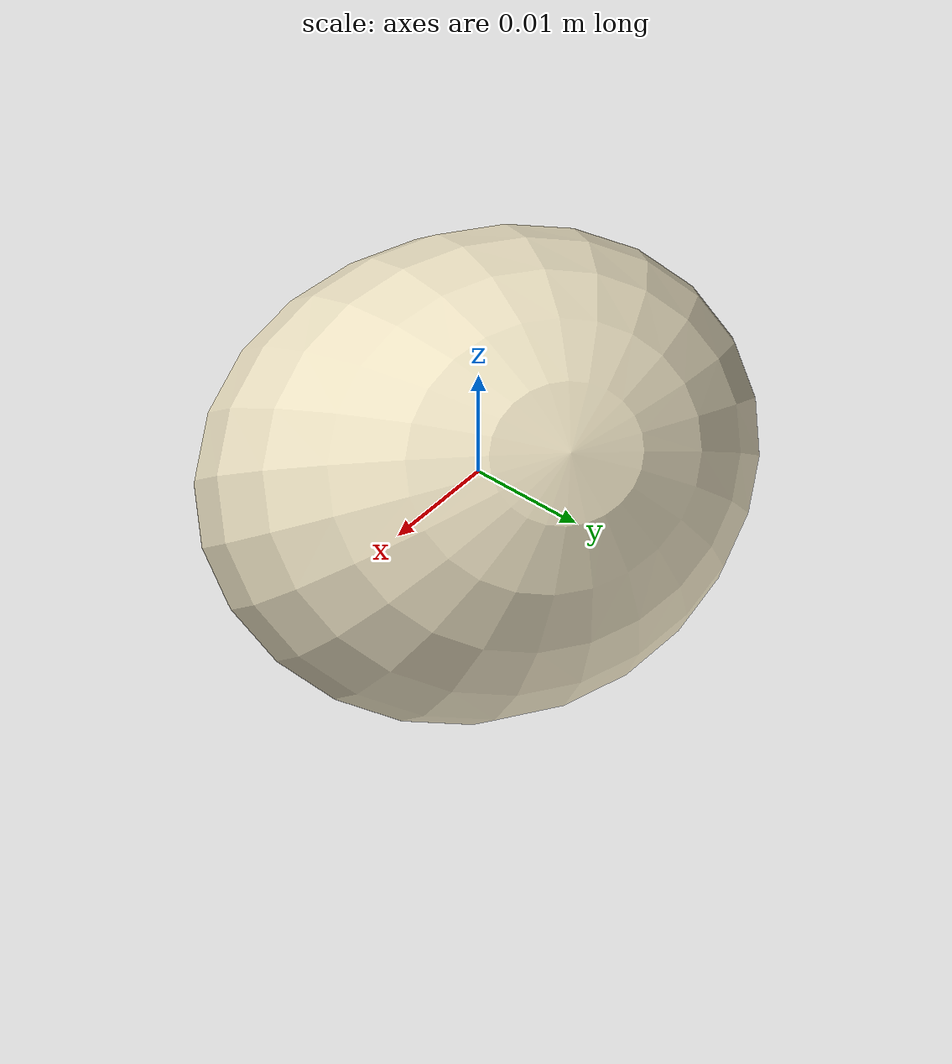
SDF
<?xml version="1.0"?>
<sdf version="1.7">
  <model name="cotton_pick_A_09">
    <static>false</static>
    <allow_auto_disable>false</allow_auto_disable>
    <link name="cotton_pick_A_09_link">
      <gravity>false</gravity>
      <self_collide>false</self_collide>
      <inertial>
        <mass>0.01200</mass>
        <inertia>
          <ixx>0.00000190</ixx>
          <iyy>0.00000190</iyy>
          <izz>0.00000190</izz>
          <ixy>0</ixy>
          <ixz>0</ixz>
          <iyz>0</iyz>
        </inertia>
      </inertial>
      <visual name="cotton_pick_A_09_visual">
        <geometry>
          <mesh>
            <uri>model://cotton_pick_A_09/meshes/cotton_pick_A_09.dae</uri>
          </mesh>
        </geometry>
      </visual>
      <collision name="cotton_pick_A_09_sphere_collision">
        <geometry>
          <sphere>
            <radius>0.01989</radius>
          </sphere>
        </geometry>
        <surface>
          <friction>
            <ode>
              <mu>1.6</mu>
              <mu2>1.6</mu2>
            </ode>
          </friction>
          <contact>
            <ode>
              <kp>8000</kp>
              <kd>80</kd>
            </ode>
          </contact>
        </surface>
      </collision>
    </link>
  </model>
</sdf>
